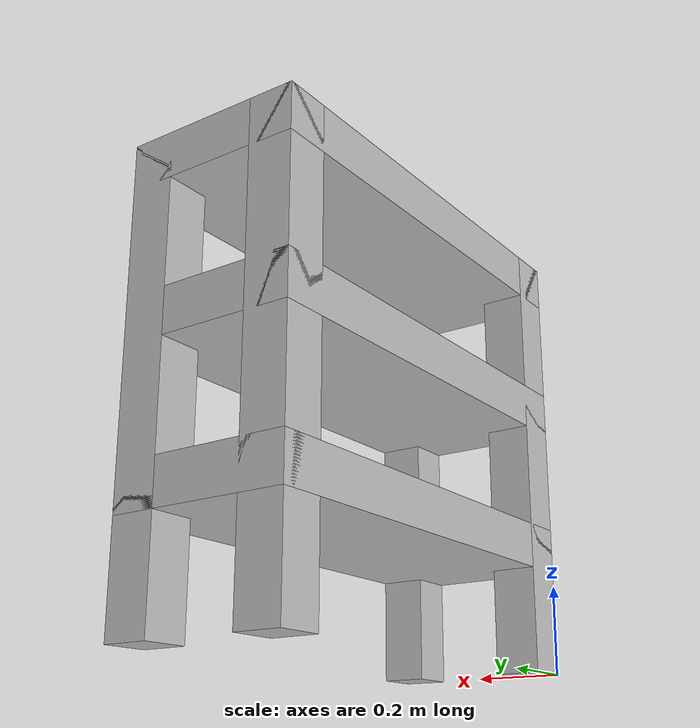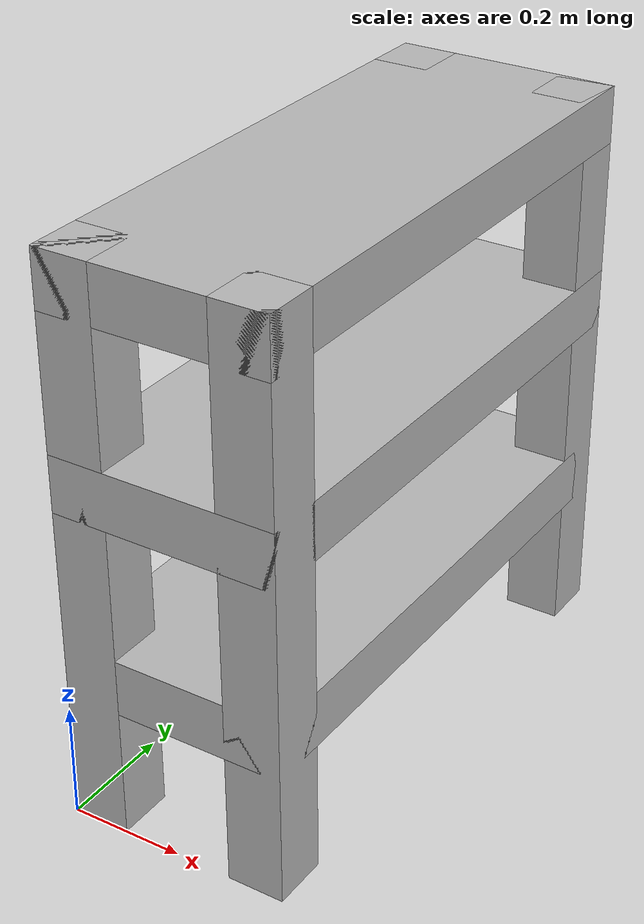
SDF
<sdf version="1.11">
 <model name="store-shelf-0">
  <static>true</static>
  <link name="store-shelf-l0-shelf0">
   <pose>0.2 0.5 0.95 0 0 0</pose>
   <visual name="store-shelf-v0-shelf0">
    <geometry>
     <box>
      <size>0.4 1 0.1</size>
     </box>
    </geometry>
    <material>
     <diffuse>0.726 0.726 0.726 1</diffuse>
     <ambient>0.726 0.726 0.726 1</ambient>
     <specular>0.726 0.726 0.726 1</specular>
    </material>
   </visual>
   <collision name="store-shelf-c0-shelf0">
    <geometry>
     <box>
      <size>0.4 1 0.1</size>
     </box>
    </geometry>
   </collision>
  </link>
  <link name="store-shelf-l0-shelf1">
   <pose>0.2 0.5 0.6166666666666666 0 0 0</pose>
   <visual name="store-shelf-v0-shelf1">
    <geometry>
     <box>
      <size>0.4 1 0.1</size>
     </box>
    </geometry>
    <material>
     <diffuse>0.726 0.726 0.726 1</diffuse>
     <ambient>0.726 0.726 0.726 1</ambient>
     <specular>0.726 0.726 0.726 1</specular>
    </material>
   </visual>
   <collision name="store-shelf-c0-shelf1">
    <geometry>
     <box>
      <size>0.4 1 0.1</size>
     </box>
    </geometry>
   </collision>
  </link>
  <link name="store-shelf-l0-shelf2">
   <pose>0.2 0.5 0.2833333333333333 0 0 0</pose>
   <visual name="store-shelf-v0-shelf2">
    <geometry>
     <box>
      <size>0.4 1 0.1</size>
     </box>
    </geometry>
    <material>
     <diffuse>0.726 0.726 0.726 1</diffuse>
     <ambient>0.726 0.726 0.726 1</ambient>
     <specular>0.726 0.726 0.726 1</specular>
    </material>
   </visual>
   <collision name="store-shelf-c0-shelf2">
    <geometry>
     <box>
      <size>0.4 1 0.1</size>
     </box>
    </geometry>
   </collision>
  </link>
  <link name="store-shelf-l0-support0">
   <pose>0.05 0.05 0.5 0 0 0</pose>
   <visual name="store-shelf-v0-support0">
    <geometry>
     <box>
      <size>0.1 0.1 1</size>
     </box>
    </geometry>
    <material>
     <diffuse>0.726 0.726 0.726 1</diffuse>
     <ambient>0.726 0.726 0.726 1</ambient>
     <specular>0.726 0.726 0.726 1</specular>
    </material>
   </visual>
   <collision name="store-shelf-c0-support0">
    <geometry>
     <box>
      <size>0.1 0.1 1</size>
     </box>
    </geometry>
   </collision>
  </link>
  <link name="store-shelf-l0-support1">
   <pose>0.35000000000000003 0.05 0.5 0 0 0</pose>
   <visual name="store-shelf-v0-support1">
    <geometry>
     <box>
      <size>0.1 0.1 1</size>
     </box>
    </geometry>
    <material>
     <diffuse>0.726 0.726 0.726 1</diffuse>
     <ambient>0.726 0.726 0.726 1</ambient>
     <specular>0.726 0.726 0.726 1</specular>
    </material>
   </visual>
   <collision name="store-shelf-c0-support1">
    <geometry>
     <box>
      <size>0.1 0.1 1</size>
     </box>
    </geometry>
   </collision>
  </link>
  <link name="store-shelf-l0-support2">
   <pose>0.05 0.95 0.5 0 0 0</pose>
   <visual name="store-shelf-v0-support2">
    <geometry>
     <box>
      <size>0.1 0.1 1</size>
     </box>
    </geometry>
    <material>
     <diffuse>0.726 0.726 0.726 1</diffuse>
     <ambient>0.726 0.726 0.726 1</ambient>
     <specular>0.726 0.726 0.726 1</specular>
    </material>
   </visual>
   <collision name="store-shelf-c0-support2">
    <geometry>
     <box>
      <size>0.1 0.1 1</size>
     </box>
    </geometry>
   </collision>
  </link>
  <link name="store-shelf-l0-support3">
   <pose>0.35000000000000003 0.95 0.5 0 0 0</pose>
   <visual name="store-shelf-v0-support3">
    <geometry>
     <box>
      <size>0.1 0.1 1</size>
     </box>
    </geometry>
    <material>
     <diffuse>0.726 0.726 0.726 1</diffuse>
     <ambient>0.726 0.726 0.726 1</ambient>
     <specular>0.726 0.726 0.726 1</specular>
    </material>
   </visual>
   <collision name="store-shelf-c0-support3">
    <geometry>
     <box>
      <size>0.1 0.1 1</size>
     </box>
    </geometry>
   </collision>
  </link>
 </model>
</sdf>
